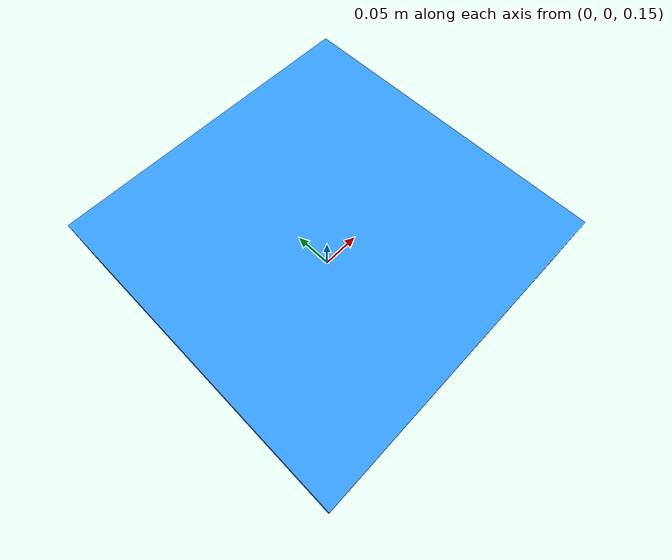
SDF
<?xml version="1.0"?>
<sdf version="1.10">
  <model name="uav">
    <pose>0 0 0.2 0 0 0</pose>

    <link name="base_link">
      <inertial>
        <mass>1.5</mass>
        <inertia>
          <ixx>0.4</ixx><iyy>0.4</iyy><izz>0.8</izz>
          <ixy>0</ixy><ixz>0</ixz><iyz>0</iyz>
        </inertia>
      </inertial>

      <visual name="body_visual">
        <geometry><box><size>0.4 0.4 0.1</size></box></geometry>
        <material>
          <ambient>0.2 0.6 1.0 1</ambient>
          <diffuse>0.2 0.6 1.0 1</diffuse>
        </material>
      </visual>

      <collision name="body_collision">
        <geometry><box><size>0.4 0.4 0.1</size></box></geometry>
      </collision>

      <sensor name="imu" type="imu">
        <always_on>true</always_on>
        <update_rate>200</update_rate>
        <topic>imu</topic>
        <imu><angular_velocity/><linear_acceleration/></imu>
      </sensor>

    </link>

    <plugin
      filename="gz-sim-velocity-control-system"
      name="gz::sim::systems::VelocityControl">
      <initial_linear>0 0 0</initial_linear>
      <initial_angular>0 0 0</initial_angular>
    </plugin>

    <plugin
      filename="gz-sim-pose-publisher-system"
      name="gz::sim::systems::PosePublisher">
      <publish_link_pose>true</publish_link_pose>
      <publish_nested_model_pose>false</publish_nested_model_pose>
      <update_rate>50</update_rate>
    </plugin>

  </model>
</sdf>
